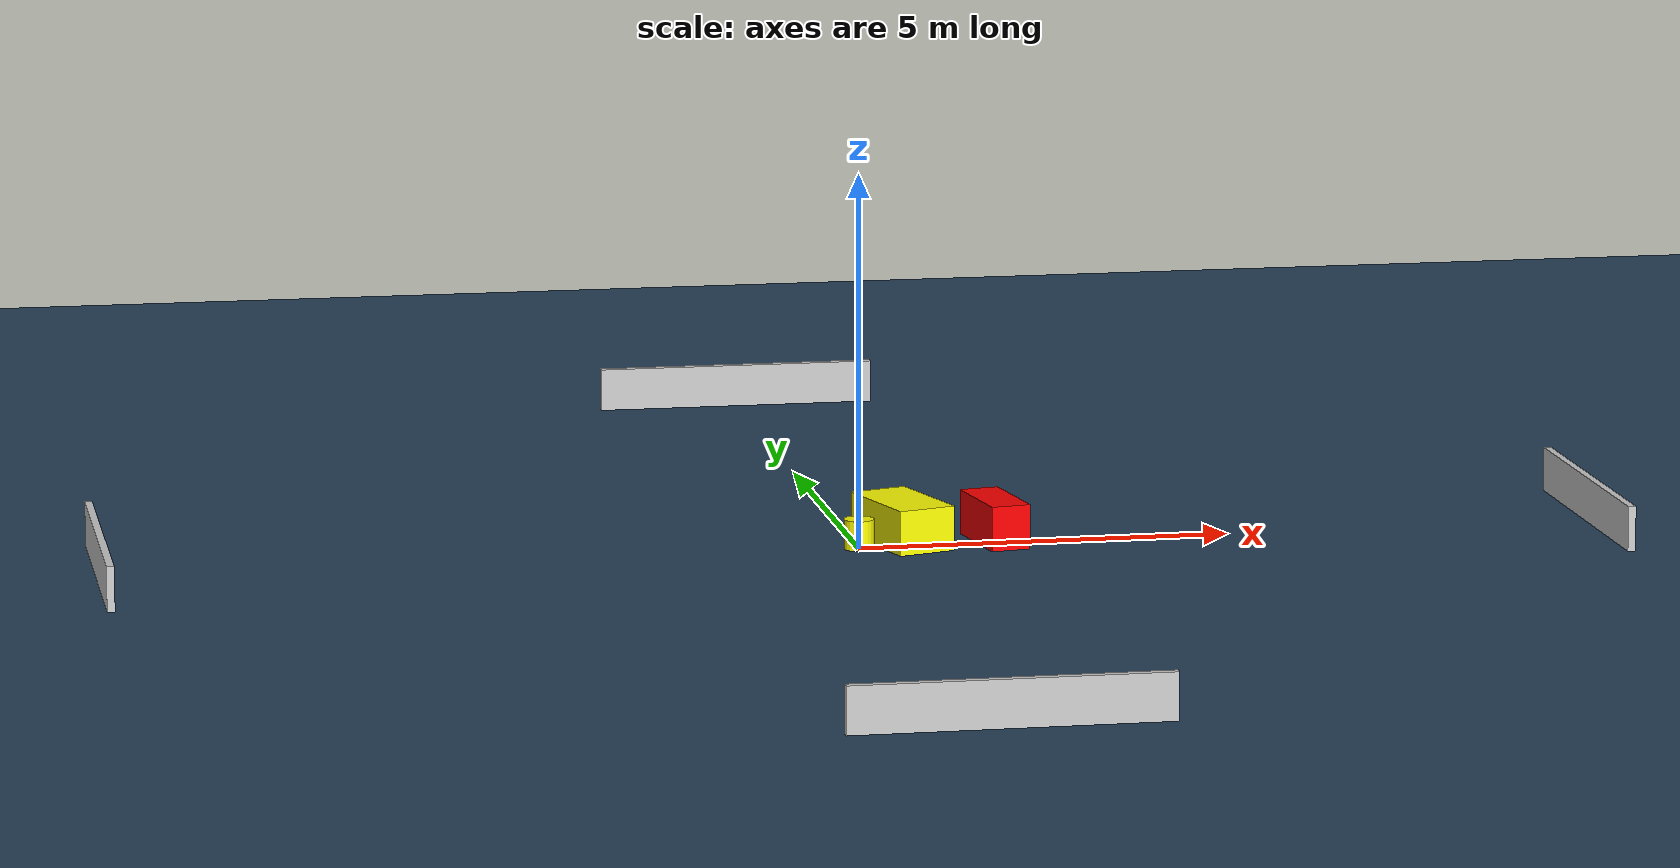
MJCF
<?xml version="1.0" ?>
<mujoco model="generated_environment">
  <option timestep="0.01" integrator="RK4" cone="elliptic"/>
  <default>
    <geom density="1"/>
  </default>
  <asset>
    <texture builtin="gradient" height="3072" name="skybox" rgb1="0.3 0.5 0.7" rgb2="0 0 0" type="skybox" width="512"/>
    <texture builtin="checker" height="300" name="groundplane" rgb1="0.2 0.3 0.4" rgb2="0.1 0.2 0.3" type="2d" width="300"/>
    <material name="groundplane" reflectance="0.2" texrepeat="5 5" texture="groundplane"/>
  </asset>
  <worldbody>
    <light dir="0 0 -1" directional="true" pos="0 0 1.5"/>
    <geom condim="3" friction="0.5 0.005 0.001" material="groundplane" name="floor" pos="0 0 0" size="0 0 0.05" type="plane"/>
    <body name="walls">
      <geom name="wall_1" condim="4" pos="-10.0 0.0 0.3" rgba="0.800000011920929 0.800000011920929 0.800000011920929 1.0" size="0.05 2.0 0.3" type="box"/>
      <geom name="wall_2" condim="4" pos="10.0 0.0 0.3" rgba="0.800000011920929 0.800000011920929 0.800000011920929 1.0" size="0.05 2.0 0.3" type="box"/>
      <geom name="wall_3" condim="4" pos="0.0 -10.0 0.3" rgba="0.800000011920929 0.800000011920929 0.800000011920929 1.0" size="2.0 0.05 0.3" type="box"/>
      <geom name="wall_4" condim="4" pos="0.0 10.0 0.3" rgba="0.800000011920929 0.800000011920929 0.800000011920929 1.0" size="2.0 0.05 0.3" type="box"/>
    </body>
    <body name="robot">
      <joint name="joint_x" type="slide" pos="0 0 0" axis="1 0 0"/>
      <joint name="joint_y" type="slide" pos="0 0 0" axis="0 1 0"/>
      <geom name="robot" type="cylinder" pos="0.0 0.0 0.2" size="0.2 0.2 0.0" mass="5.0" friction="1.0 0.005 0.0001" condim="4" rgba="1.0 1.0 0.0 1.0"/>
    </body>
    <body name="obstacle_1_movable">
      <geom name="obstacle_1_movable" condim="4" pos="0.6270278912401582 0.22098428513085477 0.3" euler="0 0 106.9973308899484" friction="0.0 0.005 0.001" rgba="1.0 1.0 0.0 1.0" size="0.7095458383247426 0.4002784536638732 0.3" type="box" mass="0.1"/>
      <joint type="free"/>
    </body>
    <body name="obstacle_2_static">
      <geom name="obstacle_2_static" condim="4" pos="1.856186046914938 0.12356866316343405 0.3" euler="0 0 189.0836750999052" friction="0.0 0.005 0.001" rgba="1.0 0.0 0.0 1.0" size="0.26706081843356066 0.6091322860382773 0.3" type="box"/>
    </body>
  </worldbody>
  <actuator>
    <motor name="actuator_x" joint="joint_x" gear="1" ctrlrange="-1 1"/>
    <motor name="actuator_y" joint="joint_y" gear="1" ctrlrange="-1 1"/>
  </actuator>
</mujoco>
